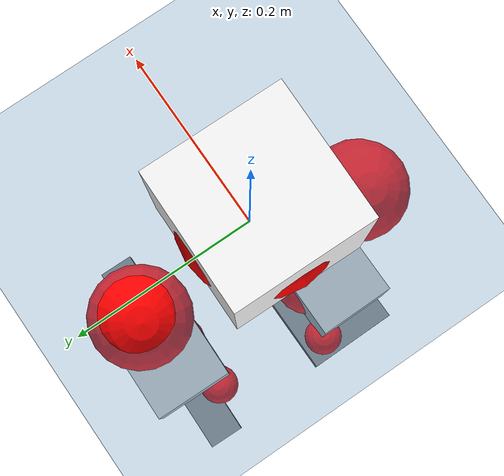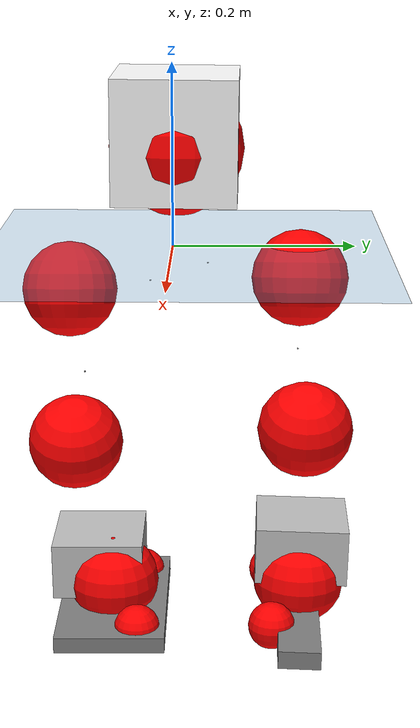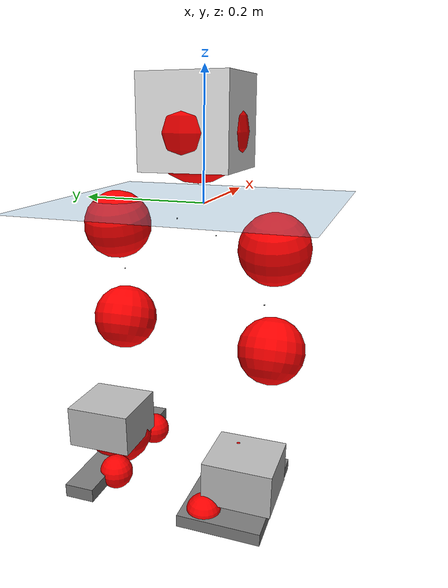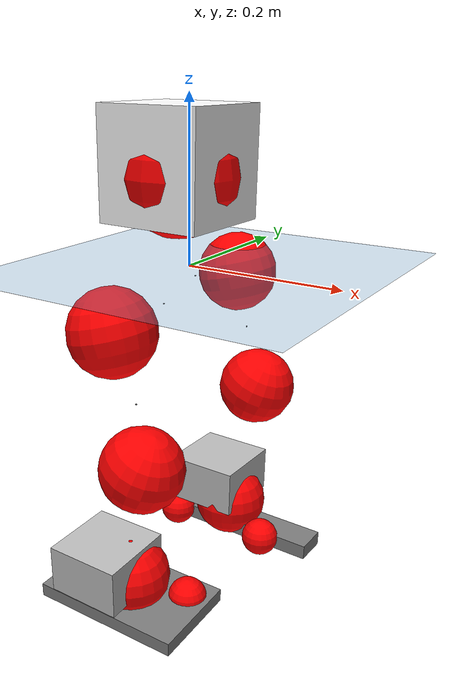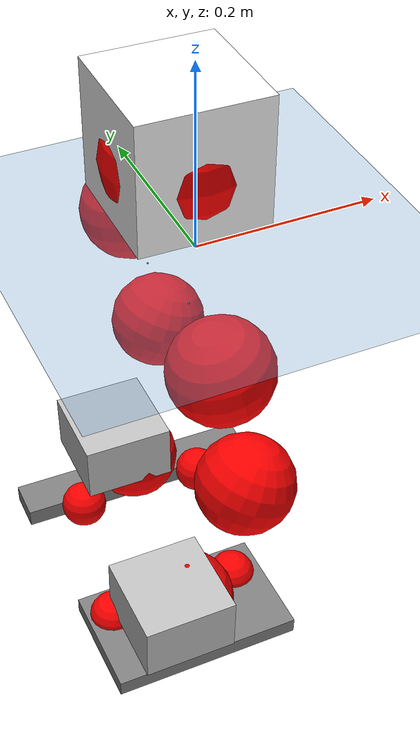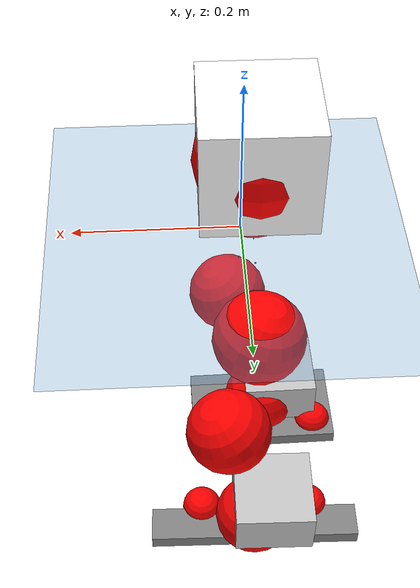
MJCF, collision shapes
<mujoco model="pi_12dof_release_v1">
  <compiler angle="radian" assetdir="assets" balanceinertia="true" inertiafromgeom="false"/>

  <option timestep="0.005" density="1.2" viscosity="2e-05"/>

  <size nkey="1"/>

  <visual>
    <quality shadowsize="8192"/>
    <map shadowclip="0.5"/>
  </visual>

  <default>
    <default class="/">
      <joint armature="0.01" damping="0.01" frictionloss="0.01"/>
      <geom contype="0" conaffinity="0" group="1" solref="-1000 -80"/>
      <site size="0.01 0.005 0.005" group="5"/>
      <general forcelimited="true" biastype="affine" gainprm="20" biasprm="0 -20 -0.5"/>
      <default class="foot">
        <geom size="0.0845 0.036 0.005" type="box" condim="6" group="4" priority="1" friction="0.9 0.2 0.2" solimp="0.015 1 0.005"/>
      </default>
      <default class="reward_collision_sphere">
        <geom group="5" rgba="1 0 0 1"/>
      </default>
    </default>
  </default>

  <asset>
    <texture type="skybox" colorspace="auto" name="//unnamed_texture_0" builtin="gradient" rgb1="0.95 0.95 0.95" rgb2="0.95 0.95 0.95" width="100" height="600"/>
    <texture type="2d" colorspace="auto" name="texplane" builtin="checker" rgb1="0.345 0.575 0.748" rgb2="0.345 0.575 0.748" markrgb="1 1 1" width="512" height="512"/>
    <material name="MatPlane" class="/" texture="texplane" texuniform="true" texrepeat="2 2" specular="0.9"/>
    <mesh name="baselink_1" class="/" file="baselink_1.STL"/>
    <mesh name="r_hip_pitch_link" class="/" file="r_hip_pitch_link.STL"/>
    <mesh name="r_hip_roll_link" class="/" file="r_hip_roll_link.STL"/>
    <mesh name="r_thigh_link" class="/" file="r_thigh_link.STL"/>
    <mesh name="r_calf_link" class="/" file="r_calf_link.STL"/>
    <mesh name="r_ankle_pitch_link" class="/" file="r_ankle_pitch_link.STL"/>
    <mesh name="r_ankle_roll_link" class="/" file="r_ankle_roll_link.STL"/>
    <mesh name="l_hip_pitch_link" class="/" file="l_hip_pitch_link.STL"/>
    <mesh name="l_hip_roll_link" class="/" file="l_hip_roll_link.STL"/>
    <mesh name="l_thigh_link" class="/" file="l_thigh_link.STL"/>
    <mesh name="l_calf_link" class="/" file="l_calf_link.STL"/>
    <mesh name="l_ankle_pitch_link" class="/" file="l_ankle_pitch_link.STL"/>
    <mesh name="l_ankle_roll_link" class="/" file="l_ankle_roll_link.STL"/>
  </asset>

  <worldbody>
    <geom name="floor" class="/" size="100 100 0.125" type="plane" group="0" material="MatPlane"/>
    <light name="toplight_shadow" class="/" pos="0 0 5" dir="0.0990148 0.0990148 -0.990148" type="directional" ambient="0.04 0.04 0.04" diffuse="0.55 0.55 0.55" specular="0.12 0.12 0.12"/>
    <light name="toplight_fill" class="/" pos="0 0 5" dir="0.0990148 0.0990148 -0.990148" type="directional" castshadow="false" ambient="0.04 0.04 0.04" diffuse="0.3 0.3 0.3" specular="0.08 0.08 0.08"/>
    <body name="trunk" pos="-0.0174309 0.00314984 0.00972427" quat="0.999968 -0.00406743 0.00247283 -0.00641327">
      <inertial pos="0.0194294 -0.00949314 0.0603636" quat="0.694047 0.00860626 0.0361467 0.71897" mass="5.78025" diaginertia="0.0152122 0.0730623 0.0164213"/>
      <joint name="//unnamed_joint_0" type="free"/>
      <geom name="//unnamed_geom_1" class="/" type="mesh" density="0" rgba="1 1 1 1" mesh="baselink_1"/>
      <geom name="//unnamed_geom_2" class="/" size="0.0675399 0.0675399 0.0675399" pos="0 0 0.110141" type="box" rgba="1 1 1 1"/>
      <geom name="//unnamed_geom_3" class="reward_collision_sphere" size="0.0742939" pos="0 0 0.0963733"/>
      <site name="imu" class="/" pos="0.0170983 -0.0532371 -0.0776369" size="0.013508"/>
      <camera name="track" class="/" pos="0 -3.11101 0" quat="0.707107 0.707107 0 0" mode="trackcom"/>
      <camera name="ego_camera" class="/" pos="0.0840096 0 0.247817" quat="-0.5 -0.5 0.5 0.5"/>
      <body name="r_hip_pitch_link" pos="-0.00145797 -0.0292034 -0.0543768" quat="0.992666 0.00269889 -0.120855 0.000640615">
        <inertial pos="-0.00498643 -0.0730195 0.00412454" quat="-0.0261089 0.709906 -0.0447157 0.70239" mass="0.94595" diaginertia="0.000138257 0.000719576 0.000407096"/>
        <joint name="r_hip_pitch_joint" class="/" pos="0 0 0" axis="0.00605378 -0.998729 -0.050031" stiffness="0.0343267" range="-1.54713 1.15159" armature="0.018995" damping="0" frictionloss="0.0046748"/>
        <geom name="//unnamed_geom_4" class="/" type="mesh" density="0" rgba="0.75294 0.75294 0.75294 1" mesh="r_hip_pitch_link"/>
        <geom name="//unnamed_geom_5" class="/" size="0.000675399 0.000675399 0.000675399" type="box" rgba="0.75294 0.75294 0.75294 1"/>
        <body name="r_hip_roll_link" pos="-0.00978183 -0.0918332 -0.0108243" quat="0.999973 0.00538137 -0.00473891 -0.00142376">
          <inertial pos="-0.0147543 0.012209 -0.0679349" quat="0.70621 -0.0804441 -0.0795567 0.698904" mass="1.15286" diaginertia="0.00059928 0.00282396 0.00057341"/>
          <joint name="r_hip_roll_joint" class="/" pos="0 0 0" axis="-0.997852 0.00201383 -0.0654722" range="0.0177462 0.753861" armature="0.0189801" damping="0.0815215" frictionloss="0.00383"/>
          <geom name="//unnamed_geom_6" class="/" type="mesh" density="0" rgba="0.75294 0.75294 0.75294 1" mesh="r_hip_roll_link"/>
          <geom name="//unnamed_geom_7" class="/" size="0.000675399 0.000675399 0.000675399" type="box" rgba="0.75294 0.75294 0.75294 1"/>
          <geom name="//unnamed_geom_8" class="reward_collision_sphere" size="0.0540319"/>
          <body name="r_thigh_link" pos="-0.00444552 0.0159272 -0.0941765" quat="0.999983 0.00187105 0.00526649 0.0015674">
            <inertial pos="0.0141592 0.00263167 -0.0776615" quat="0.725644 0.686913 -0.00837227 0.0389981" mass="0.263436" diaginertia="0.000195344 0.000571245 0.000202456"/>
            <joint name="r_thigh_joint" class="/" pos="0 0 0" axis="0.000363642 0.000392961 -1" stiffness="0.0561216" range="-0.025598 0.369137" armature="0.0204284" damping="0" frictionloss="0.0253303"/>
            <geom name="//unnamed_geom_9" class="/" type="mesh" density="0" rgba="0.75294 0.75294 0.75294 1" mesh="r_thigh_link"/>
            <geom name="//unnamed_geom_10" class="/" size="0.000675399 0.000675399 0.000675399" type="box" rgba="0.75294 0.75294 0.75294 1"/>
            <body name="r_calf_link" pos="-0.00440549 -0.0113408 -0.0806329" quat="0.948185 -0.00282649 0.317652 0.0058806">
              <inertial pos="-0.0106037 0.0133058 -0.0958539" quat="0.997314 0.00190049 -0.0673298 0.0287583" mass="2.01035" diaginertia="0.00821632 0.0360374 0.00112624"/>
              <joint name="r_calf_joint" class="/" pos="0 0 0" axis="-0.0536382 -0.997327 0.0496258" stiffness="0.0738862" range="-1.98867 0.730825" armature="0.0173676" damping="0" frictionloss="0.00450078"/>
              <geom name="//unnamed_geom_11" class="/" type="mesh" density="0" rgba="0.75294 0.75294 0.75294 1" mesh="r_calf_link"/>
              <geom name="//unnamed_geom_12" class="/" size="0.000675399 0.000675399 0.000675399" type="box" rgba="0.75294 0.75294 0.75294 1"/>
              <geom name="//unnamed_geom_13" class="reward_collision_sphere" size="0.0540319"/>
              <body name="r_ankle_pitch_link" pos="-0.000621397 0.0172187 -0.193999" quat="0.980273 0.000143763 -0.197648 0.000258611">
                <inertial pos="-0.00553958 0.0187731 0.0036718" quat="0.02129 0.677466 0.0377133 0.734278" mass="0.416583" diaginertia="0.000636974 0.00248712 0.000546474"/>
                <joint name="r_ankle_pitch_joint" class="/" pos="0 0 0" axis="0.052054 -0.996747 -0.061526" range="-1.48832 0.511887" armature="0.0115483" damping="0.075544" frictionloss="0.00612269"/>
                <geom name="//unnamed_geom_14" class="/" type="mesh" density="0" rgba="0.75294 0.75294 0.75294 1" mesh="r_ankle_pitch_link"/>
                <geom name="//unnamed_geom_15" class="/" size="0.0526811 0.0540319 0.03377" type="box" rgba="0.75294 0.75294 0.75294 1"/>
                <body name="r_ankle_roll_link" pos="0.0831976 0.0180653 0.0077179" quat="1 0.000136536 -0.000141005 0.000349224">
                  <inertial pos="-0.0258793 -0.00265982 -0.0215044" quat="0.525387 0.4792 0.468072 0.524638" mass="1.32738" diaginertia="0.00200254 0.00942021 0.00163716"/>
                  <joint name="r_ankle_roll_joint" class="/" pos="0 0 0" axis="-0.996478 -0.0217016 0.0809934" range="0.165874 0.0932346" armature="0.00342639" damping="0.0282966" frictionloss="0.0142055"/>
                  <geom name="//unnamed_geom_16" class="/" type="mesh" density="0" rgba="0.75294 0.75294 0.75294 1" mesh="r_ankle_roll_link"/>
                  <geom name="//unnamed_geom_17" class="/" type="mesh" rgba="0.75294 0.75294 0.75294 1" mesh="r_ankle_roll_link"/>
                  <geom name="right_foot" class="foot" size="0.107528 0.0642718 0.00944161" pos="-0.0571266 0 -0.0605775"/>
                  <geom name="//unnamed_geom_19" class="reward_collision_sphere" size="0.0540319" pos="-0.0560064 0 -0.0275352"/>
                  <geom name="//unnamed_geom_20" class="reward_collision_sphere" size="0.027016" pos="0.0168019 0.0311101 -0.0550704"/>
                  <geom name="//unnamed_geom_21" class="reward_collision_sphere" size="0.027016" pos="-0.134415 0.0311101 -0.0550704"/>
                  <site name="right_foot" class="foot" pos="-0.0571266 0 -0.0605775" size="0.013508"/>
                </body>
              </body>
            </body>
          </body>
        </body>
      </body>
      <body name="l_hip_pitch_link" pos="0.00124995 0.0352858 -0.032304" quat="0.992176 8.96719e-05 -0.124844 0.000880861">
        <inertial pos="-0.00745813 0.0681695 0.0126954" quat="-0.0719383 0.758191 0.0483153 0.646248" mass="0.709145" diaginertia="0.00020034 0.000908328 0.000371368"/>
        <joint name="l_hip_pitch_joint" class="/" pos="0 0 0" axis="0.0786098 0.996307 -0.0345459" stiffness="0.042068" range="-1.40785 1.75394" armature="0.0140435" damping="0" frictionloss="0.0133683"/>
        <geom name="//unnamed_geom_22" class="/" type="mesh" density="0" rgba="0.75294 0.75294 0.75294 1" mesh="l_hip_pitch_link"/>
        <geom name="//unnamed_geom_23" class="/" size="0.000675399 0.000675399 0.000675399" type="box" rgba="0.75294 0.75294 0.75294 1"/>
        <body name="l_hip_roll_link" pos="-0.00154902 0.103265 -0.0152546" quat="0.999998 0.00148857 0.00156125 0.000371184">
          <inertial pos="-0.00168829 0.000416427 -0.0888537" quat="0.67964 -0.0866537 -0.10881 0.720237" mass="0.694019" diaginertia="0.000520281 0.00216401 0.000493959"/>
          <joint name="l_hip_roll_joint" class="/" pos="0 0 0" axis="-0.999221 0.0149777 0.0364978" stiffness="0.0885845" range="-0.414044 -0.159173" armature="0.0198939" damping="0.000211742" frictionloss="0.0189167"/>
          <geom name="//unnamed_geom_24" class="/" type="mesh" density="0" rgba="0.75294 0.75294 0.75294 1" mesh="l_hip_roll_link"/>
          <geom name="//unnamed_geom_25" class="/" size="0.000675399 0.000675399 0.000675399" type="box" rgba="0.75294 0.75294 0.75294 1"/>
          <geom name="//unnamed_geom_26" class="reward_collision_sphere" size="0.0540319"/>
          <body name="l_thigh_link" pos="-0.000828688 -0.00113932 -0.0793026" quat="0.999996 -0.00152602 -0.00211441 0.0012013">
            <inertial pos="0.00805811 -0.0187953 -0.0686144" quat="0.69843 0.714519 0.0231489 -0.0335096" mass="0.248966" diaginertia="0.000225343 0.000750339 0.000313944"/>
            <joint name="l_thigh_joint" class="/" pos="0 0 0" axis="-0.0382035 -0.0127822 -0.999188" range="-0.655821 0.046915" armature="0.0070905" damping="0.0860461" frictionloss="0.0065057"/>
            <geom name="//unnamed_geom_27" class="/" type="mesh" density="0" rgba="0.75294 0.75294 0.75294 1" mesh="l_thigh_link"/>
            <geom name="//unnamed_geom_28" class="/" size="0.000675399 0.000675399 0.000675399" type="box" rgba="0.75294 0.75294 0.75294 1"/>
            <body name="l_calf_link" pos="-0.00796484 0.0102441 -0.0916574" quat="0.948427 -0.00571504 0.316898 -0.00534969">
              <inertial pos="-0.0164897 -0.00707455 -0.07929" quat="0.998158 -0.052382 0.0276698 0.0130473" mass="2.01126" diaginertia="0.00631486 0.0326492 0.000898643"/>
              <joint name="l_calf_joint" class="/" pos="0 0 0" axis="-0.0483887 0.998622 -0.0203253" stiffness="0.0325358" range="-0.559894 1.8745" armature="0.00899487" damping="0" frictionloss="0.0233616"/>
              <geom name="//unnamed_geom_29" class="/" type="mesh" density="0" rgba="0.75294 0.75294 0.75294 1" mesh="l_calf_link"/>
              <geom name="//unnamed_geom_30" class="/" size="0.000675399 0.000675399 0.000675399" type="box" rgba="0.75294 0.75294 0.75294 1"/>
              <geom name="//unnamed_geom_31" class="reward_collision_sphere" size="0.0540319"/>
              <body name="l_ankle_pitch_link" pos="0.00669843 0.00319756 -0.175883" quat="0.980045 0.000122637 -0.198773 -0.000234057">
                <inertial pos="0.00955669 -0.00211627 -0.000898982" quat="-0.0040065 0.705343 -0.00334466 0.708847" mass="0.511679" diaginertia="0.000575125 0.00171239 0.000587625"/>
                <joint name="l_ankle_pitch_joint" class="/" pos="0 0 0" axis="-0.00218628 0.999994 -0.00268118" stiffness="0.0550633" range="-0.559149 1.23723" armature="0.0131201" damping="0.037128" frictionloss="0.00722349"/>
                <geom name="//unnamed_geom_32" class="/" type="mesh" density="0" rgba="0.75294 0.75294 0.75294 1" mesh="l_ankle_pitch_link"/>
                <geom name="//unnamed_geom_33" class="/" size="0.0526811 0.0540319 0.03377" type="box" rgba="0.75294 0.75294 0.75294 1"/>
                <body name="l_ankle_roll_link" pos="0.0795943 -0.0020856 -0.00989247" quat="0.999999 -0.00107177 -3.51804e-05 -0.00114117">
                  <inertial pos="-0.013787 -0.00394452 -0.0182885" quat="0.580056 0.456299 0.433412 0.517185" mass="1.33254" diaginertia="0.00178993 0.00918945 0.0011565"/>
                  <joint name="l_ankle_roll_joint" class="/" pos="0 0 0" axis="-0.996622 -0.0604372 0.0555984" stiffness="0.0741079" range="-0.157018 -0.0380158" armature="0.0190519" damping="0" frictionloss="0.0194259"/>
                  <geom name="//unnamed_geom_34" class="/" type="mesh" density="0" rgba="0.75294 0.75294 0.75294 1" mesh="l_ankle_roll_link"/>
                  <geom name="//unnamed_geom_35" class="/" type="mesh" rgba="0.75294 0.75294 0.75294 1" mesh="l_ankle_roll_link"/>
                  <geom name="left_foot" class="foot" size="0.144954 0.0240633 0.0104356" pos="-0.0571266 0 -0.0605775"/>
                  <geom name="//unnamed_geom_37" class="reward_collision_sphere" size="0.0540319" pos="-0.0560064 0 -0.0275352"/>
                  <geom name="//unnamed_geom_38" class="reward_collision_sphere" size="0.027016" pos="0.0168019 -0.0311101 -0.0550704"/>
                  <geom name="//unnamed_geom_39" class="reward_collision_sphere" size="0.027016" pos="-0.134415 -0.0311101 -0.0550704"/>
                  <site name="left_foot" class="foot" pos="-0.0571266 0 -0.0605775" size="0.013508"/>
                </body>
              </body>
            </body>
          </body>
        </body>
      </body>
    </body>
  </worldbody>

  <contact>
    <pair class="/" geom1="floor" geom2="right_foot" name="//unnamed_contact_1"/>
    <pair class="/" geom1="floor" geom2="left_foot" name="//unnamed_contact_0"/>
  </contact>

  <actuator>
    <general name="r_hip_pitch_joint" class="/" joint="r_hip_pitch_joint" forcerange="-30.1062 30.1062" gainprm="25.496" biasprm="0 -25.496 -0.524887"/>
    <general name="r_hip_roll_joint" class="/" joint="r_hip_roll_joint" forcerange="-16.2801 16.2801" gainprm="25.496" biasprm="0 -25.496 -0.524887"/>
    <general name="r_thigh_joint" class="/" joint="r_thigh_joint" forcerange="-33.8163 33.8163" gainprm="25.496" biasprm="0 -25.496 -0.524887"/>
    <general name="r_calf_joint" class="/" joint="r_calf_joint" forcerange="-10.114 10.114" gainprm="25.496" biasprm="0 -25.496 -0.524887"/>
    <general name="r_ankle_pitch_joint" class="/" joint="r_ankle_pitch_joint" forcerange="-22.4271 22.4271" gainprm="25.496" biasprm="0 -25.496 -0.524887"/>
    <general name="r_ankle_roll_joint" class="/" joint="r_ankle_roll_joint" forcerange="-44.8928 44.8928" gainprm="25.496" biasprm="0 -25.496 -0.524887"/>
    <general name="l_hip_pitch_joint" class="/" joint="l_hip_pitch_joint" forcerange="-28.1464 28.1464" gainprm="25.496" biasprm="0 -25.496 -0.524887"/>
    <general name="l_hip_roll_joint" class="/" joint="l_hip_roll_joint" forcerange="-39.5006 39.5006" gainprm="25.496" biasprm="0 -25.496 -0.524887"/>
    <general name="l_thigh_joint" class="/" joint="l_thigh_joint" forcerange="-32.9726 32.9726" gainprm="25.496" biasprm="0 -25.496 -0.524887"/>
    <general name="l_calf_joint" class="/" joint="l_calf_joint" forcerange="-30.9694 30.9694" gainprm="25.496" biasprm="0 -25.496 -0.524887"/>
    <general name="l_ankle_pitch_joint" class="/" joint="l_ankle_pitch_joint" forcerange="-17.3537 17.3537" gainprm="25.496" biasprm="0 -25.496 -0.524887"/>
    <general name="l_ankle_roll_joint" class="/" joint="l_ankle_roll_joint" forcerange="-29.4336 29.4336" gainprm="25.496" biasprm="0 -25.496 -0.524887"/>
  </actuator>

  <sensor>
    <gyro site="imu" name="imu_angular_velocity"/>
    <velocimeter site="imu" name="imu_linear_velocity"/>
    <framelinvel objtype="site" objname="left_foot" name="left_foot_global_linear_velocity"/>
    <framelinvel objtype="site" objname="right_foot" name="right_foot_global_linear_velocity"/>
  </sensor>

  <keyframe>
    <key name="home" qpos="0 0 0.291 1 0 0 0 0.4 0 0 -0.8 0.4 0 -0.4 0 0 0.8 -0.4 0"/>
  </keyframe>
</mujoco>
